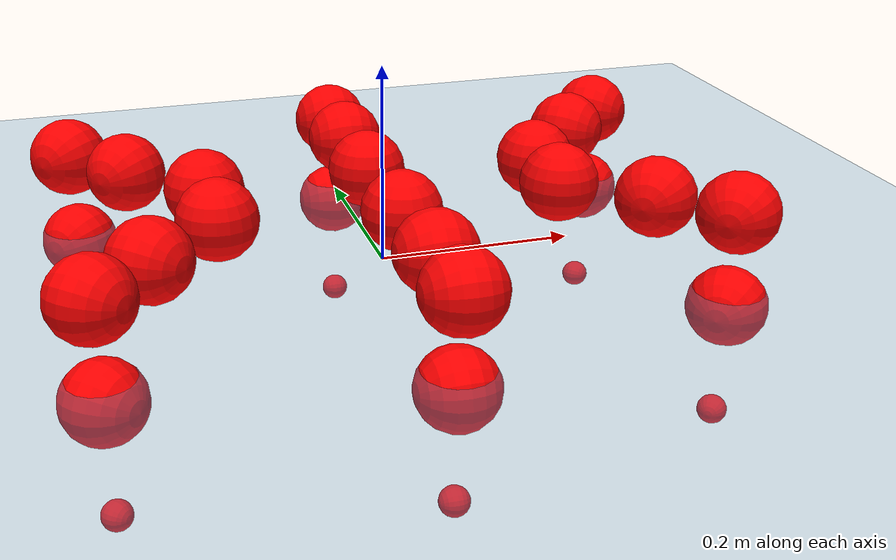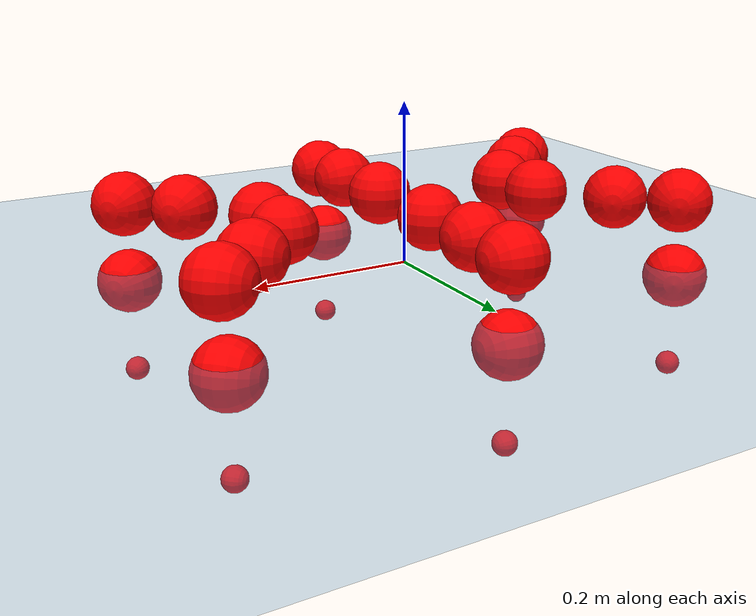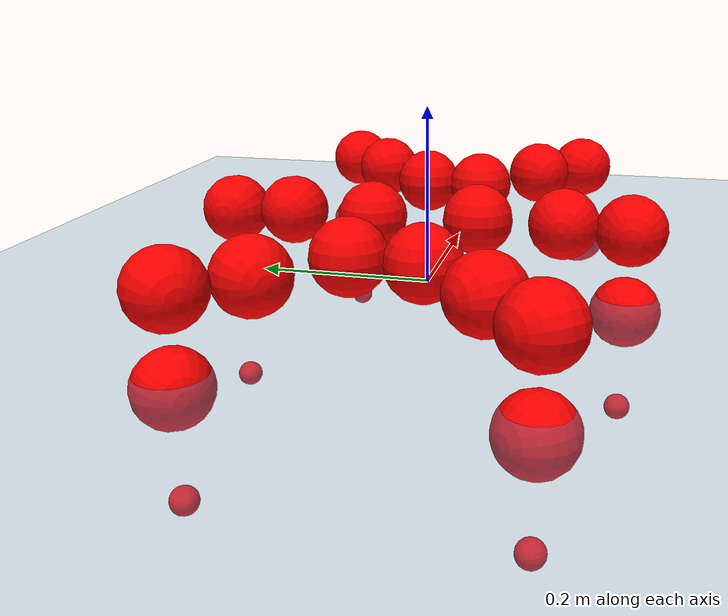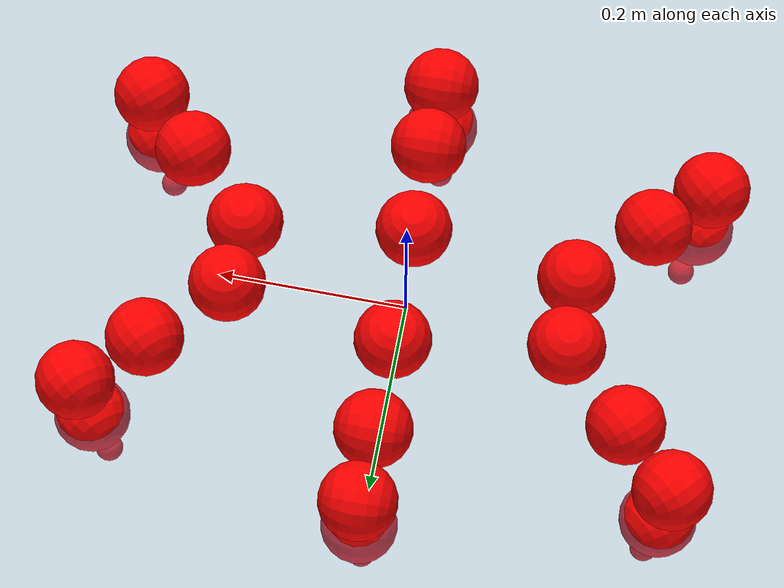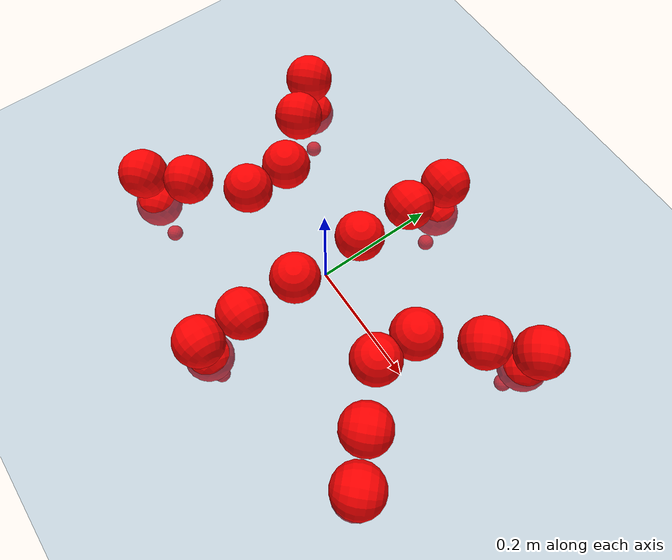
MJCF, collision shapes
<mujoco model="Golem">
  <compiler angle="radian" assetdir="assets" balanceinertia="true" inertiafromgeom="false"/>

  <option timestep="0.005" density="1.2" viscosity="2e-05"/>

  <size nkey="1"/>

  <visual>
    <quality shadowsize="8192"/>
    <map shadowclip="0.5"/>
  </visual>

  <default>
    <default class="/">
      <joint armature="0.01" damping="0.01" frictionloss="0.01"/>
      <geom contype="0" conaffinity="0" group="1" solref="-1000 -80"/>
      <site size="0.01 0.005 0.005" group="5"/>
      <general forcelimited="true" biastype="affine" gainprm="25" biasprm="0 -25 -0.5"/>
      <default class="visual">
        <geom type="mesh" group="2"/>
      </default>
      <default class="collision">
        <geom group="3"/>
      </default>
      <default class="foot">
        <geom size="0.01 0 0" condim="6" group="4" priority="1" solimp="0.015 1 0.01"/>
      </default>
      <default class="reward_collision_sphere">
        <geom group="5" rgba="1 0 0 1"/>
      </default>
    </default>
  </default>

  <asset>
    <texture type="skybox" colorspace="auto" name="//unnamed_texture_0" builtin="gradient" rgb1="0.95 0.95 0.95" rgb2="0.95 0.95 0.95" width="100" height="600"/>
    <texture type="2d" colorspace="auto" name="texplane" builtin="checker" rgb1="0.345 0.575 0.748" rgb2="0.345 0.575 0.748" markrgb="1 1 1" width="512" height="512"/>
    <material name="MatPlane" class="/" texture="texplane" texuniform="true" texrepeat="2 2" specular="0.9"/>
    <mesh name="body" class="/" file="body.stl" scale="0.001 0.001 0.001"/>
    <mesh name="coxa" class="/" file="coxa.stl" scale="0.001 0.001 0.001"/>
    <mesh name="femur" class="/" file="femur.stl" scale="0.001 0.001 0.001"/>
    <mesh name="tibia" class="/" file="tibia.stl" scale="0.001 0.001 0.001"/>
    <mesh name="tarsus" class="/" file="tarsus.stl" scale="0.001 0.001 0.001"/>
  </asset>

  <worldbody>
    <geom name="floor" class="/" size="100 100 0.125" type="plane" group="0" material="MatPlane"/>
    <light name="toplight_shadow" class="/" pos="0 0 5" dir="0.0990148 0.0990148 -0.990148" type="directional" ambient="0.04 0.04 0.04" diffuse="0.55 0.55 0.55" specular="0.12 0.12 0.12"/>
    <light name="toplight_fill" class="/" pos="0 0 5" dir="0.0990148 0.0990148 -0.990148" type="directional" castshadow="false" ambient="0.04 0.04 0.04" diffuse="0.3 0.3 0.3" specular="0.08 0.08 0.08"/>
    <body name="trunk" pos="0.00240937 0.00157533 0.00283129" quat="1 -0.000171057 0.000261559 -0.000162925">
      <inertial pos="-0.00200934 -0.0014957 -0.00184678" quat="0.99999 0.000257489 0.00421302 -0.00114456" mass="3.73775" diaginertia="0.0157442 0.00184303 0.0202704"/>
      <joint name="//unnamed_joint_0" type="free"/>
      <geom name="//unnamed_geom_1" class="/" pos="0 0 0.0734636" quat="1 0 0 0" type="mesh" rgba="0.9 0.9 0.9 1" mesh="body"/>
      <site name="imu" class="/" pos="0.145046 -0.0138677 0.117601" size="0.00985398"/>
      <camera name="track" class="/" pos="0 -1.42212 0" quat="0.707107 0.707107 0 0" mode="trackcom"/>
      <camera name="ego_camera" class="/" pos="0.142644 0 0.114787" quat="-0.5 -0.5 0.5 0.5"/>
      <body name="coxa_RR" pos="-0.193668 -0.0583233 0.0743291" quat="0.382537 -0.00087616 9.82331e-05 -0.92394">
        <inertial pos="-0.000527118 -0.000777406 0.00122234" quat="0.999901 0.00586036 0.00374218 0.0121955" mass="0.198239" diaginertia="0.0160811 0.00177693 0.0199926"/>
        <joint name="coxa_joint_RR" class="/" pos="0 0 0" axis="0.000618383 -0.000558694 -1" stiffness="0.00861721" range="-3.08956 3.14084" armature="0.00986895" damping="0.00601338" frictionloss="0.00986479"/>
        <geom name="//unnamed_geom_2" class="/" type="mesh" rgba="0.2 0.2 0.2 1" mesh="coxa"/>
        <geom name="//unnamed_geom_3" class="reward_collision_sphere" size="0.0394159" pos="-0.0329179 0 0"/>
        <body name="femur_RR" pos="0.0656094 0.00083863 -0.000828718" quat="0.499694 -0.50065 0.499699 0.499957">
          <inertial pos="-0.00246832 0.000211799 -0.00115936" quat="1 -2.65605e-05 0.000377917 -0.000416625" mass="0.194101" diaginertia="0.0161401 0.00184575 0.0202343"/>
          <joint name="femur_joint_RR" class="/" pos="0 0 0" axis="0.00583602 -0.00105419 -0.999982" stiffness="0.00511093" range="-3.19483 3.1961" armature="0.00846381" damping="0" frictionloss="0.00999434"/>
          <geom name="//unnamed_geom_4" class="/" type="mesh" rgba="0.9 0.9 0.9 1" mesh="femur"/>
          <geom name="//unnamed_geom_5" class="reward_collision_sphere" size="0.0394159"/>
          <body name="tibia_RR" pos="0.00312083 -0.0757678 0.000438325" quat="0.000162177 1 -0.000107605 8.2011e-06">
            <inertial pos="0.00268561 -0.00086639 0.00105536" quat="0.9999 -0.00254357 -0.0031844 -0.0135634" mass="0.192102" diaginertia="0.0166101 0.0019379 0.0207671"/>
            <joint name="tibia_joint_RR" class="/" pos="0 0 0" axis="0.00979325 0.00936638 0.999908" range="-3.19457 3.13831" armature="0.00959532" damping="0.0219457" frictionloss="0.00990677"/>
            <geom name="//unnamed_geom_6" class="/" type="mesh" rgba="0.2 0.2 0.2 1" mesh="tibia"/>
            <geom name="//unnamed_geom_7" class="reward_collision_sphere" size="0.0394159"/>
            <body name="tarsus_RR" pos="0.0980747 -0.00132657 -0.000468891" quat="1 -0.000103688 -0.000254889 0.00017395">
              <inertial pos="0.069238 0.000313422 -0.00217059" quat="0.508284 0.491248 0.49545 0.504828" mass="0.1945" diaginertia="0.0156041 0.00189933 0.0202961"/>
              <joint name="tarsus_joint_RR" class="/" pos="0 0 0" axis="-0.00595504 0.00289576 0.999978" range="-3.12014 3.14597" armature="0.010978" damping="0.040991" frictionloss="0.0112385"/>
              <geom name="//unnamed_geom_8" class="/" type="mesh" rgba="0.9 0.9 0.9 1" mesh="tarsus"/>
              <geom name="foot_1" class="foot" size="0.0106871" pos="0.122893 0 0" quat="0 -0.707107 0 0.707107"/>
              <geom name="//unnamed_geom_10" class="reward_collision_sphere" size="0.0394159"/>
              <geom name="//unnamed_geom_11" class="reward_collision_sphere" size="0.014781" pos="0.117956 0 0"/>
              <site name="foot_1" class="foot" pos="0.122893 0 0" quat="0 -0.707107 0 0.707107" size="0.00985398"/>
            </body>
          </body>
        </body>
      </body>
      <body name="coxa_RM" pos="0.000296912 -0.091605 0.073035" quat="0.707062 9.71705e-05 -0.000269485 -0.707151">
        <inertial pos="0.000245288 0.00292187 0.00222081" quat="0.999989 -0.00195526 0.00356476 -0.00241394" mass="0.188112" diaginertia="0.0161777 0.00187412 0.0203354"/>
        <joint name="coxa_joint_RM" class="/" pos="0 0 0" axis="0.00754859 -0.00492896 -0.999959" range="-3.15647 3.10453" armature="0.0100594" damping="0.0231039" frictionloss="0.00968262"/>
        <geom name="//unnamed_geom_12" class="/" type="mesh" rgba="0.2 0.2 0.2 1" mesh="coxa"/>
        <geom name="//unnamed_geom_13" class="reward_collision_sphere" size="0.0394159" pos="-0.0329179 0 0"/>
        <body name="femur_RM" pos="0.062611 0.0023987 -9.03216e-05" quat="0.5 -0.50005 0.499899 0.500051">
          <inertial pos="-0.000362366 -0.00303675 0.00247472" quat="0.999981 0.000670169 -0.00500643 -0.00341404" mass="0.194946" diaginertia="0.0157218 0.00178404 0.019987"/>
          <joint name="femur_joint_RM" class="/" pos="0 0 0" axis="-0.00179824 -0.00579673 -0.999982" range="-3.11405 3.08307" armature="0.0101453" damping="0" frictionloss="0.0103468"/>
          <geom name="//unnamed_geom_14" class="/" type="mesh" rgba="0.9 0.9 0.9 1" mesh="femur"/>
          <geom name="//unnamed_geom_15" class="reward_collision_sphere" size="0.0394159"/>
          <body name="tibia_RM" pos="0.00297252 -0.0732832 -0.000309611" quat="-2.87512e-05 1 -8.72688e-05 -7.01302e-05">
            <inertial pos="-0.000796286 -0.00131211 0.00231025" quat="0.999994 -6.9123e-05 0.000546073 -0.00348954" mass="0.189306" diaginertia="0.0159969 0.00180975 0.019575"/>
            <joint name="tibia_joint_RM" class="/" pos="0 0 0" axis="0.00195157 0.000710428 0.999998" stiffness="3.93214e-06" range="-3.16105 3.19477" armature="0.0113101" damping="0.0150146" frictionloss="0.0112509"/>
            <geom name="//unnamed_geom_16" class="/" type="mesh" rgba="0.2 0.2 0.2 1" mesh="tibia"/>
            <geom name="//unnamed_geom_17" class="reward_collision_sphere" size="0.0394159"/>
            <body name="tarsus_RM" pos="0.093567 -0.000730331 0.00217686" quat="1 0.000317525 0.000277464 -0.00049702">
              <inertial pos="0.0670429 -0.000357235 -8.00851e-05" quat="0.502201 0.499583 0.500635 0.497569" mass="0.198189" diaginertia="0.0169641 0.00187228 0.020522"/>
              <joint name="tarsus_joint_RM" class="/" pos="0 0 0" axis="-0.00477143 0.0011347 0.999988" range="-3.14164 3.15897" armature="0.00901575" damping="0.013664" frictionloss="0.00961498"/>
              <geom name="//unnamed_geom_18" class="/" type="mesh" rgba="0.9 0.9 0.9 1" mesh="tarsus"/>
              <geom name="foot_2" class="foot" size="0.00903078" pos="0.122893 0 0" quat="0 -0.707107 0 0.707107"/>
              <geom name="//unnamed_geom_20" class="reward_collision_sphere" size="0.0394159"/>
              <geom name="//unnamed_geom_21" class="reward_collision_sphere" size="0.014781" pos="0.117956 0 0"/>
              <site name="foot_2" class="foot" pos="0.122893 0 0" quat="0 -0.707107 0 0.707107" size="0.00985398"/>
            </body>
          </body>
        </body>
      </body>
      <body name="coxa_RF" pos="0.194211 -0.0572948 0.0738781" quat="0.923901 0.000144712 0.000119412 -0.382631">
        <inertial pos="0.0020599 0.000283982 -0.000161863" quat="0.999999 -0.000141954 -0.00107514 -9.1578e-05" mass="0.193423" diaginertia="0.0162204 0.00184813 0.0196226"/>
        <joint name="coxa_joint_RF" class="/" pos="0 0 0" axis="-0.00509354 -0.00286987 -0.999983" range="-3.19554 3.14746" armature="0.0083764" damping="0.0169732" frictionloss="0.0102358"/>
        <geom name="//unnamed_geom_22" class="/" type="mesh" rgba="0.2 0.2 0.2 1" mesh="coxa"/>
        <geom name="//unnamed_geom_23" class="reward_collision_sphere" size="0.0394159" pos="-0.0329179 0 0"/>
        <body name="femur_RF" pos="0.0656126 0.000756546 0.00342298" quat="0.500394 -0.499408 0.500172 0.500026">
          <inertial pos="0.00123438 -0.000796306 -0.00229439" quat="0.999965 0.000656672 0.00245377 -0.00796267" mass="0.185624" diaginertia="0.0154374 0.00183209 0.0201985"/>
          <joint name="femur_joint_RF" class="/" pos="0 0 0" axis="-0.000554669 0.000271199 -1" range="-3.10181 3.1374" armature="0.011145" damping="0" frictionloss="0.0109828"/>
          <geom name="//unnamed_geom_24" class="/" type="mesh" rgba="0.9 0.9 0.9 1" mesh="femur"/>
          <geom name="//unnamed_geom_25" class="reward_collision_sphere" size="0.0394159"/>
          <body name="tibia_RF" pos="0.0010068 -0.0787339 0.00195027" quat="-0.00019118 1 -0.000111477 -6.81035e-05">
            <inertial pos="0.00210903 0.00288312 -0.00139565" quat="0.999963 -0.00850816 -0.000789875 -0.000510928" mass="0.193256" diaginertia="0.0160157 0.00175942 0.0205858"/>
            <joint name="tibia_joint_RF" class="/" pos="0 0 0" axis="-0.00100855 0.000870164 0.999999" range="-3.15305 3.12011" armature="0.0110012" damping="4.28455e-05" frictionloss="0.00873471"/>
            <geom name="//unnamed_geom_26" class="/" type="mesh" rgba="0.2 0.2 0.2 1" mesh="tibia"/>
            <geom name="//unnamed_geom_27" class="reward_collision_sphere" size="0.0394159"/>
            <body name="tarsus_RF" pos="0.097995 0.000713058 -0.00124412" quat="1 0.000255522 0.000344989 -0.000411193">
              <inertial pos="0.0652632 -0.00106248 -0.00114097" quat="0.499041 0.49968 0.500003 0.501273" mass="0.188188" diaginertia="0.0163922 0.0018297 0.0202623"/>
              <joint name="tarsus_joint_RF" class="/" pos="0 0 0" axis="-0.0106609 -0.00455185 0.999933" stiffness="0.0132459" range="-3.11755 3.15043" armature="0.00975832" damping="0.00291714" frictionloss="0.00998464"/>
              <geom name="//unnamed_geom_28" class="/" type="mesh" rgba="0.9 0.9 0.9 1" mesh="tarsus"/>
              <geom name="foot_3" class="foot" size="0.0090544" pos="0.122893 0 0" quat="0 -0.707107 0 0.707107"/>
              <geom name="//unnamed_geom_30" class="reward_collision_sphere" size="0.0394159"/>
              <geom name="//unnamed_geom_31" class="reward_collision_sphere" size="0.014781" pos="0.117956 0 0"/>
              <site name="foot_3" class="foot" pos="0.122893 0 0" quat="0 -0.707107 0 0.707107" size="0.00985398"/>
            </body>
          </body>
        </body>
      </body>
      <body name="coxa_LR" pos="-0.195158 0.0617624 0.075922" quat="0.381744 -0.000704433 0.00011181 0.924268">
        <inertial pos="-0.00167056 -0.000887346 0.00287694" quat="0.999933 0.000381784 0.00219462 -0.011344" mass="0.191543" diaginertia="0.0157587 0.00182613 0.0195043"/>
        <joint name="coxa_joint_LR" class="/" pos="0 0 0" axis="0.000773981 -0.0157202 -0.999876" range="-3.19163 3.15974" armature="0.00911899" damping="0.0165903" frictionloss="0.00981488"/>
        <geom name="//unnamed_geom_32" class="/" type="mesh" rgba="0.2 0.2 0.2 1" mesh="coxa"/>
        <geom name="//unnamed_geom_33" class="reward_collision_sphere" size="0.0394159" pos="-0.0329179 0 0"/>
        <body name="femur_LR" pos="0.066047 -0.00111426 -0.00136064" quat="0.499641 -0.501145 0.499376 0.499837">
          <inertial pos="0.0021427 0.000405182 0.000898445" quat="0.999985 -0.00238372 0.000649 0.00492819" mass="0.184232" diaginertia="0.015674 0.00180961 0.0199382"/>
          <joint name="femur_joint_LR" class="/" pos="0 0 0" axis="-0.00211445 -0.0149769 0.999886" range="-3.13184 3.09259" armature="0.0111122" damping="0" frictionloss="0.0100742"/>
          <geom name="//unnamed_geom_34" class="/" type="mesh" rgba="0.9 0.9 0.9 1" mesh="femur"/>
          <geom name="//unnamed_geom_35" class="reward_collision_sphere" size="0.0394159"/>
          <body name="tibia_LR" pos="-0.00180378 -0.0781382 -0.00304699" quat="0.000462174 0.999999 -0.00137968 -7.76004e-05">
            <inertial pos="0.000706579 -0.000570487 0.00253606" quat="0.9999 0.00673481 -0.00810066 0.00946767" mass="0.189199" diaginertia="0.0162826 0.00185938 0.0198413"/>
            <joint name="tibia_joint_LR" class="/" pos="0 0 0" axis="0.000369175 -0.00140059 -0.999999" range="-3.18609 3.19443" armature="0.00858173" damping="0.0156235" frictionloss="0.01124"/>
            <geom name="//unnamed_geom_36" class="/" type="mesh" rgba="0.2 0.2 0.2 1" mesh="tibia"/>
            <geom name="//unnamed_geom_37" class="reward_collision_sphere" size="0.0394159"/>
            <body name="tarsus_LR" pos="0.0961273 0.00112713 0.00271646" quat="1 -0.000639215 0.00018652 0.000687764">
              <inertial pos="0.0672875 0.000514299 0.000475936" quat="0.508355 0.50476 0.495781 0.490911" mass="0.196969" diaginertia="0.0165947 0.00190346 0.0209265"/>
              <joint name="tarsus_joint_LR" class="/" pos="0 0 0" axis="-0.00245118 0.00433193 -0.999988" range="-3.17619 3.13346" armature="0.00988851" damping="0.0304649" frictionloss="0.009053"/>
              <geom name="//unnamed_geom_38" class="/" type="mesh" rgba="0.9 0.9 0.9 1" mesh="tarsus"/>
              <geom name="foot_4" class="foot" size="0.00988242" pos="0.122893 0 0" quat="0.707107 0 -0.707107 0"/>
              <geom name="//unnamed_geom_40" class="reward_collision_sphere" size="0.0394159"/>
              <geom name="//unnamed_geom_41" class="reward_collision_sphere" size="0.014781" pos="0.117956 0 0"/>
              <site name="foot_4" class="foot" pos="0.122893 0 0" quat="0.707107 0 -0.707107 0" size="0.00985398"/>
            </body>
          </body>
        </body>
      </body>
      <body name="coxa_LM" pos="-0.00113121 0.0955041 0.0707999" quat="0.706396 0.000596168 -0.000630604 0.707816">
        <inertial pos="-0.00167103 -0.00181951 -0.00246893" quat="0.999997 -0.00174988 -0.00182602 -0.000279569" mass="0.188498" diaginertia="0.0153656 0.00178012 0.020115"/>
        <joint name="coxa_joint_LM" class="/" pos="0 0 0" axis="0.000127985 0.000742478 -1" range="-3.14222 3.12843" armature="0.010443" damping="0.00936083" frictionloss="0.00848509"/>
        <geom name="//unnamed_geom_42" class="/" type="mesh" rgba="0.2 0.2 0.2 1" mesh="coxa"/>
        <geom name="//unnamed_geom_43" class="reward_collision_sphere" size="0.0394159" pos="-0.0329179 0 0"/>
        <body name="femur_LM" pos="0.0626067 -0.00121131 0.00149024" quat="0.500028 -0.500135 0.500099 0.499737">
          <inertial pos="0.00252286 0.00256223 0.00150631" quat="0.999997 0.00223913 -0.000659436 0.000889224" mass="0.191046" diaginertia="0.0164557 0.00180769 0.0193382"/>
          <joint name="femur_joint_LM" class="/" pos="0 0 0" axis="-0.00718098 0.00373765 0.999967" stiffness="0.00449501" range="-3.14735 3.0906" armature="0.0113018" damping="0" frictionloss="0.0111995"/>
          <geom name="//unnamed_geom_44" class="/" type="mesh" rgba="0.9 0.9 0.9 1" mesh="femur"/>
          <geom name="//unnamed_geom_45" class="reward_collision_sphere" size="0.0394159"/>
          <body name="tibia_LM" pos="0.00303178 -0.0731525 -0.00102812" quat="5.36218e-05 1 -0.000488787 -6.37016e-05">
            <inertial pos="-0.00255109 -0.00107145 0.000446157" quat="0.999999 -0.0013382 0.0006643 -0.000328631" mass="0.191857" diaginertia="0.0157407 0.00182711 0.0193053"/>
            <joint name="tibia_joint_LM" class="/" pos="0 0 0" axis="0.011013 0.00330004 -0.999934" range="-3.12751 3.10673" armature="0.0109076" damping="0" frictionloss="0.00961653"/>
            <geom name="//unnamed_geom_46" class="/" type="mesh" rgba="0.2 0.2 0.2 1" mesh="tibia"/>
            <geom name="//unnamed_geom_47" class="reward_collision_sphere" size="0.0394159"/>
            <body name="tarsus_LM" pos="0.0987251 -0.0018363 0.00134776" quat="1 -6.23392e-05 -0.000850241 0.000517154">
              <inertial pos="0.0625582 -0.00045478 -0.0020912" quat="0.499309 0.50213 0.496444 0.502095" mass="0.190481" diaginertia="0.0154627 0.00171336 0.0186688"/>
              <joint name="tarsus_joint_LM" class="/" pos="0 0 0" axis="0.00505796 0.00609596 -0.999969" stiffness="0.00577128" range="-3.11789 3.10384" armature="0.00860358" damping="0.0251013" frictionloss="0.00984378"/>
              <geom name="//unnamed_geom_48" class="/" type="mesh" rgba="0.9 0.9 0.9 1" mesh="tarsus"/>
              <geom name="foot_5" class="foot" size="0.00983442" pos="0.122893 0 0" quat="0.707107 0 -0.707107 0"/>
              <geom name="//unnamed_geom_50" class="reward_collision_sphere" size="0.0394159"/>
              <geom name="//unnamed_geom_51" class="reward_collision_sphere" size="0.014781" pos="0.117956 0 0"/>
              <site name="foot_5" class="foot" pos="0.122893 0 0" quat="0.707107 0 -0.707107 0" size="0.00985398"/>
            </body>
          </body>
        </body>
      </body>
      <body name="coxa_LF" pos="0.197083 0.0588881 0.0744838" quat="0.923857 0.000647747 5.2143e-05 0.382738">
        <inertial pos="0.00194677 -0.00109867 0.00234006" quat="0.999999 0.000722204 6.04647e-05 -0.00151044" mass="0.194002" diaginertia="0.0153884 0.0018501 0.0198018"/>
        <joint name="coxa_joint_LF" class="/" pos="0 0 0" axis="-0.0107387 0.0156663 -0.99982" stiffness="0.0115921" range="-3.14033 3.13877" armature="0.00923121" damping="0.00686375" frictionloss="0.0100471"/>
        <geom name="//unnamed_geom_52" class="/" type="mesh" rgba="0.2 0.2 0.2 1" mesh="coxa"/>
        <geom name="//unnamed_geom_53" class="reward_collision_sphere" size="0.0394159" pos="-0.0329179 0 0"/>
        <body name="femur_LF" pos="0.066114 0.0036394 0.00192412" quat="0.500037 -0.500035 0.499955 0.499973">
          <inertial pos="0.00180344 -0.0024321 0.00105016" quat="0.999942 0.00604533 -0.000762249 0.00889592" mass="0.185323" diaginertia="0.0157347 0.00182108 0.0199611"/>
          <joint name="femur_joint_LF" class="/" pos="0 0 0" axis="0.00922354 -0.00776342 0.999927" range="-3.14922 3.14325" armature="0.0113028" damping="0.0106023" frictionloss="0.009344"/>
          <geom name="//unnamed_geom_54" class="/" type="mesh" rgba="0.9 0.9 0.9 1" mesh="femur"/>
          <geom name="//unnamed_geom_55" class="reward_collision_sphere" size="0.0394159"/>
          <body name="tibia_LF" pos="0.000982127 -0.0797685 -0.000116489" quat="-0.00125513 0.999999 0.000265715 -0.000622001">
            <inertial pos="-0.000334618 0.00173753 -0.000396622" quat="0.999996 -0.00186448 -0.00101095 0.00171514" mass="0.190886" diaginertia="0.016099 0.00179553 0.0199907"/>
            <joint name="tibia_joint_LF" class="/" pos="0 0 0" axis="0.00960545 -0.00273421 -0.99995" range="-3.18729 3.19285" armature="0.00921021" damping="0.00907239" frictionloss="0.0107691"/>
            <geom name="//unnamed_geom_56" class="/" type="mesh" rgba="0.2 0.2 0.2 1" mesh="tibia"/>
            <geom name="//unnamed_geom_57" class="reward_collision_sphere" size="0.0394159"/>
            <body name="tarsus_LF" pos="0.0963124 0.000500837 -0.0037757" quat="0.999999 -5.39706e-05 0.000838469 0.00100595">
              <inertial pos="0.0639452 0.00296679 0.000456803" quat="0.501603 0.499632 0.500668 0.49809" mass="0.184853" diaginertia="0.015256 0.00174235 0.0198063"/>
              <joint name="tarsus_joint_LF" class="/" pos="0 0 0" axis="-0.00779255 -0.0144074 -0.999866" stiffness="0.0283388" range="-3.1669 3.16162" armature="0.0100697" damping="0.00134497" frictionloss="0.010362"/>
              <geom name="//unnamed_geom_58" class="/" type="mesh" rgba="0.9 0.9 0.9 1" mesh="tarsus"/>
              <geom name="foot_6" class="foot" size="0.0103667" pos="0.122893 0 0" quat="0.707107 0 -0.707107 0"/>
              <geom name="//unnamed_geom_60" class="reward_collision_sphere" size="0.0394159"/>
              <geom name="//unnamed_geom_61" class="reward_collision_sphere" size="0.014781" pos="0.117956 0 0"/>
              <site name="foot_6" class="foot" pos="0.122893 0 0" quat="0.707107 0 -0.707107 0" size="0.00985398"/>
            </body>
          </body>
        </body>
      </body>
    </body>
  </worldbody>

  <contact>
    <pair class="/" geom1="floor" geom2="foot_1" name="//unnamed_contact_0"/>
    <pair class="/" geom1="floor" geom2="foot_2" name="//unnamed_contact_1"/>
    <pair class="/" geom1="floor" geom2="foot_3" name="//unnamed_contact_2"/>
    <pair class="/" geom1="floor" geom2="foot_4" name="//unnamed_contact_3"/>
    <pair class="/" geom1="floor" geom2="foot_5" name="//unnamed_contact_4"/>
    <pair class="/" geom1="floor" geom2="foot_6" name="//unnamed_contact_5"/>
  </contact>

  <actuator>
    <general name="coxa_joint_RR" class="/" joint="coxa_joint_RR" forcerange="-7.88192 7.88192" gainprm="24.2563" biasprm="0 -24.2563 -0.535714"/>
    <general name="femur_joint_RR" class="/" joint="femur_joint_RR" forcerange="-6.44226 6.44226" gainprm="24.2563" biasprm="0 -24.2563 -0.535714"/>
    <general name="tibia_joint_RR" class="/" joint="tibia_joint_RR" forcerange="-6.95748 6.95748" gainprm="24.2563" biasprm="0 -24.2563 -0.535714"/>
    <general name="tarsus_joint_RR" class="/" joint="tarsus_joint_RR" forcerange="-6.44332 6.44332" gainprm="24.2563" biasprm="0 -24.2563 -0.535714"/>
    <general name="coxa_joint_RM" class="/" joint="coxa_joint_RM" forcerange="-7.20946 7.20946" gainprm="24.2563" biasprm="0 -24.2563 -0.535714"/>
    <general name="femur_joint_RM" class="/" joint="femur_joint_RM" forcerange="-6.9119 6.9119" gainprm="24.2563" biasprm="0 -24.2563 -0.535714"/>
    <general name="tibia_joint_RM" class="/" joint="tibia_joint_RM" forcerange="-7.10794 7.10794" gainprm="24.2563" biasprm="0 -24.2563 -0.535714"/>
    <general name="tarsus_joint_RM" class="/" joint="tarsus_joint_RM" forcerange="-6.72554 6.72554" gainprm="24.2563" biasprm="0 -24.2563 -0.535714"/>
    <general name="coxa_joint_RF" class="/" joint="coxa_joint_RF" forcerange="-7.47158 7.47158" gainprm="24.2563" biasprm="0 -24.2563 -0.535714"/>
    <general name="femur_joint_RF" class="/" joint="femur_joint_RF" forcerange="-7.27679 7.27679" gainprm="24.2563" biasprm="0 -24.2563 -0.535714"/>
    <general name="tibia_joint_RF" class="/" joint="tibia_joint_RF" forcerange="-7.94576 7.94576" gainprm="24.2563" biasprm="0 -24.2563 -0.535714"/>
    <general name="tarsus_joint_RF" class="/" joint="tarsus_joint_RF" forcerange="-7.29288 7.29288" gainprm="24.2563" biasprm="0 -24.2563 -0.535714"/>
    <general name="coxa_joint_LR" class="/" joint="coxa_joint_LR" forcerange="-6.63117 6.63117" gainprm="24.2563" biasprm="0 -24.2563 -0.535714"/>
    <general name="femur_joint_LR" class="/" joint="femur_joint_LR" forcerange="-7.82368 7.82368" gainprm="24.2563" biasprm="0 -24.2563 -0.535714"/>
    <general name="tibia_joint_LR" class="/" joint="tibia_joint_LR" forcerange="-7.96029 7.96029" gainprm="24.2563" biasprm="0 -24.2563 -0.535714"/>
    <general name="tarsus_joint_LR" class="/" joint="tarsus_joint_LR" forcerange="-7.17178 7.17178" gainprm="24.2563" biasprm="0 -24.2563 -0.535714"/>
    <general name="coxa_joint_LM" class="/" joint="coxa_joint_LM" forcerange="-7.93342 7.93342" gainprm="24.2563" biasprm="0 -24.2563 -0.535714"/>
    <general name="femur_joint_LM" class="/" joint="femur_joint_LM" forcerange="-7.20043 7.20043" gainprm="24.2563" biasprm="0 -24.2563 -0.535714"/>
    <general name="tibia_joint_LM" class="/" joint="tibia_joint_LM" forcerange="-6.85626 6.85626" gainprm="24.2563" biasprm="0 -24.2563 -0.535714"/>
    <general name="tarsus_joint_LM" class="/" joint="tarsus_joint_LM" forcerange="-6.478 6.478" gainprm="24.2563" biasprm="0 -24.2563 -0.535714"/>
    <general name="coxa_joint_LF" class="/" joint="coxa_joint_LF" forcerange="-7.77695 7.77695" gainprm="24.2563" biasprm="0 -24.2563 -0.535714"/>
    <general name="femur_joint_LF" class="/" joint="femur_joint_LF" forcerange="-6.67267 6.67267" gainprm="24.2563" biasprm="0 -24.2563 -0.535714"/>
    <general name="tibia_joint_LF" class="/" joint="tibia_joint_LF" forcerange="-7.0307 7.0307" gainprm="24.2563" biasprm="0 -24.2563 -0.535714"/>
    <general name="tarsus_joint_LF" class="/" joint="tarsus_joint_LF" forcerange="-7.1378 7.1378" gainprm="24.2563" biasprm="0 -24.2563 -0.535714"/>
  </actuator>

  <sensor>
    <gyro site="imu" name="imu_angular_velocity"/>
    <velocimeter site="imu" name="imu_linear_velocity"/>
    <framelinvel objtype="site" objname="foot_1" name="foot_1_global_linear_velocity"/>
    <framelinvel objtype="site" objname="foot_2" name="foot_2_global_linear_velocity"/>
    <framelinvel objtype="site" objname="foot_3" name="foot_3_global_linear_velocity"/>
    <framelinvel objtype="site" objname="foot_4" name="foot_4_global_linear_velocity"/>
    <framelinvel objtype="site" objname="foot_5" name="foot_5_global_linear_velocity"/>
    <framelinvel objtype="site" objname="foot_6" name="foot_6_global_linear_velocity"/>
  </sensor>

  <keyframe>
    <key name="home" qpos="0 0 0.1457 1 0 0 0 0 0 0 0 0 0 0 0 0 0 0 0 0 0 0 0 0 0 0 0 0 0 0 0"/>
  </keyframe>
</mujoco>
